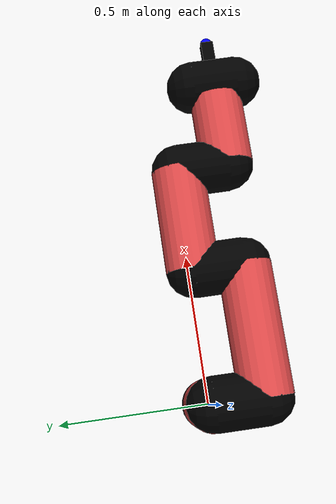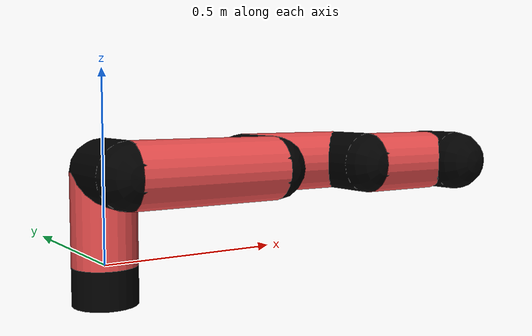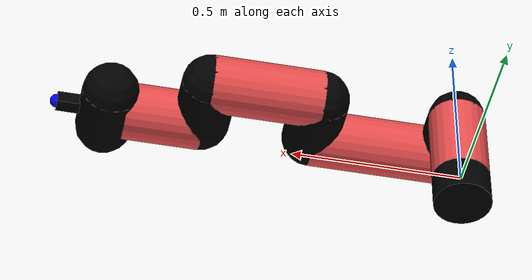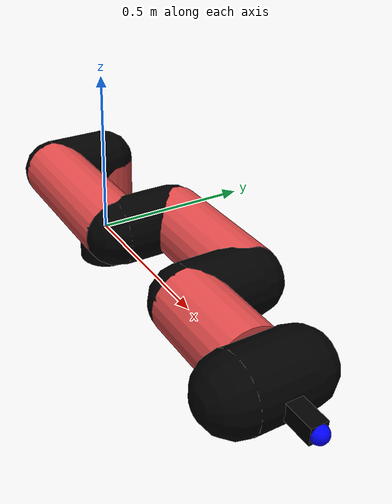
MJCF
<mujoco model="manipulator">
		<compiler angle="degree" coordinate="local" inertiafromgeom="auto" meshdir="meshes/"/>
		<option gravity="0 0 0" integrator="RK4" iterations="30" timestep="0.01"/>

		<default>
		<joint armature="1" limited="true" stiffness="10" damping="15" frictionloss="5.0"/>
		<geom conaffinity="1" condim="3" contype="1" friction=".5 .1 .1" margin="0.002"/>
		<motor ctrllimited="true"/>
		<position ctrllimited="true"/>
		</default>

		<asset>
		<texture builtin="gradient" height="100" rgb1="1.0 1.0 1.0" rgb2="1.0 1.0 1.0" type="skybox" width="100"/>
		<texture builtin="flat" height="32" name="arm_tex" rgb1="0.9 0.3 0.3" type="2d" width="32"/>
		<texture builtin="flat" height="32" name="gripper_tex" rgb1="0.0 0.0 0.0" type="cube" width="32"/>

		<material name="arm_mat" shininess="0.1" specular="0.1" texture="arm_tex"/>
		<material name="gripper_mat" shininess="1" specular="1" texture="gripper_tex"/>
		</asset>

		<worldbody>
		<light cutoff="45" diffuse=".8 .8 .8" dir="0 0.16 -1" directional="false" name="light" pos="0 -2.0 8.0" specular="0.3 0.3 0.3"/>

		<body name="base_link" pos="0 0 -0.1">
		<geom fromto="0 0 0 0 0 0.1" material="arm_mat" name="base_link" rgba="0.0 0.0 0.0 1" size="0.085" type="cylinder"/>
		</body>

		<body name="l1" pos="0 0 0">
<geom fromto="0 0 0 0 0 0.24" material="arm_mat" name="l1" rgba="0.9 0.3 0.3 1" size="0.085" type="cylinder"/>
<geom fromto="0 0 0.24 0 -0.16 0.24" material="arm_mat" name="l1_ex" rgba="0.0 0.0 0.0 1" size="0.085" type="capsule"/>
<joint axis="0 0 1" name="j1" pos="0 0 0" range="-90 90" damping="31.87" frictionloss="9.22"/>

<body name="l2" pos="0 -0.16 0.24">
<geom fromto="0 0 0 0.41 0 0" material="arm_mat" name="l2" rgba="0.9 0.3 0.3 1" size="0.085" type="cylinder"/>
<geom fromto="0.41 0 0 0.41 0.16 0" material="arm_mat" name="l2_ex" rgba="0.0 0.0 0.0 1" size="0.085" type="capsule"/>
<joint axis="0.06 0.91 0.01" name="j2" pos="0 0 0" range="-90 60" damping="30.41" frictionloss="8.34"/>

<body name="l3" pos="0.41 0.16 0">
<geom fromto="0 0 0 0.33 0 0" material="arm_mat" name="l3" rgba="0.9 0.3 0.3 1" size="0.085" type="cylinder"/>
<geom fromto="0.33 0 0 0.33 -0.16 0" material="arm_mat" name="l3_ex" rgba="0.0 0.0 0.0 1" size="0.085" type="capsule"/>
<joint axis="0.19 0.93 0.2" name="j3" pos="0 0 0" range="-30 60" damping="29.32" frictionloss="9.11"/>

<body name="l4" pos="0.33 -0.16 0">
<geom fromto="0 0 0 0.23 0 0" material="arm_mat" name="l4" rgba="0.9 0.3 0.3 1" size="0.085" type="cylinder"/>
<joint axis="0.06 0.76 0.21" name="j4" pos="0 0 0" range="-30 60" damping="28.3" frictionloss="9.6"/>

<body name="gripper" pos="0.23 0 0">
<geom fromto="0.05 -0.07 0 0.05 0.07 0" material="gripper_mat" name="gripper" rgba="0.0 0.0 0.0 1" size="0.085" type="capsule"/><joint axis="1 0 0" name="j5" pos="0 0 0" range="-90 90" damping="15" frictionloss="5.0"/><body name="finger" pos="0.1 0 0">
<geom fromto="0 0.0 0 0.1 0.0 0" material="gripper_mat" name="finger" rgba="0.0 0.0 0.0 1" size="0.020 0.06 0.06" type="box"/>
</body>
<site name="current" pos="0.2 0. 0.0" rgba="0. 0. 1.0 1" size="0.02" type="sphere"/>
</body>
</body>
</body>
</body>
</body>
</worldbody>
<actuator>
<motor ctrllimited="true" ctrlrange="-1.0 1.0" joint="j1" gear="62.78"/>
<motor ctrllimited="true" ctrlrange="-1.0 1.0" joint="j2" gear="70.92"/>
<motor ctrllimited="true" ctrlrange="-1.0 1.0" joint="j3" gear="78.95"/>
<motor ctrllimited="true" ctrlrange="-1.0 1.0" joint="j4" gear="67.52"/>
<motor ctrllimited="true" ctrlrange="-1.0 1.0" joint="j5" gear="80"/>
</actuator>
</mujoco>
